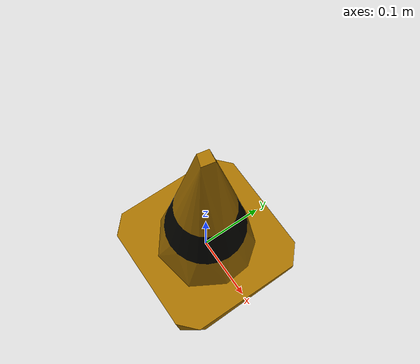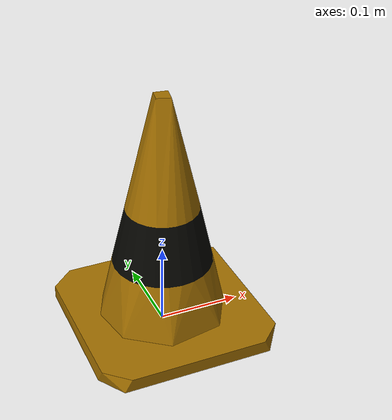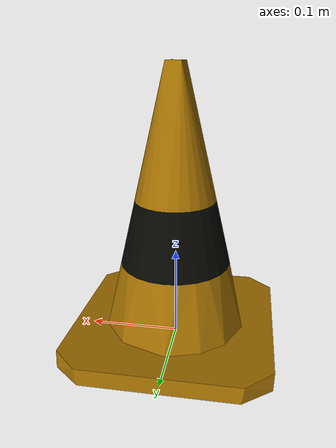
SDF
<?xml version='1.0'?>
<sdf version='1.6'>
  <model name='yellow_cone'>
    <link name='link'>
      <pose frame=''>0 0 0 0 0 0</pose>
      <inertial>
        <inertia>
          <ixx>0.0016</ixx>
          <ixy>0</ixy>
          <ixz>0</ixz>
          <iyy>0.0016</iyy>
          <iyz>0</iyz>
          <izz>0.0010</izz>
        </inertia>
        <mass>0.45</mass>
      </inertial>
      <visual name='visual'>
        <geometry>
          <mesh>
            <uri>package://eufs_description/meshes/cone_yellow.dae</uri>
          </mesh>
        </geometry>
        <cast_shadows>1</cast_shadows>
      </visual>
      <collision name='collision'>
        <max_contacts>3</max_contacts>
        <geometry>
          <mesh>
            <uri>package://eufs_description/meshes/cone_yellow.dae</uri>
          </mesh>
        </geometry>
      </collision>
    </link>
  </model>
</sdf>
